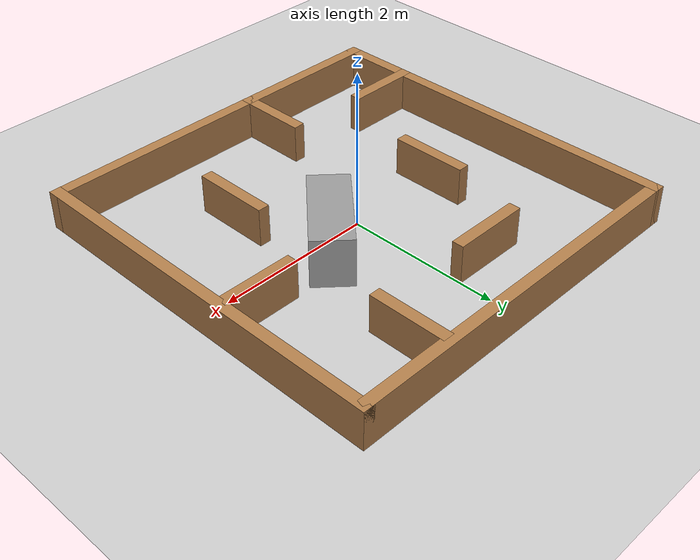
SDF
<sdf version="1.7">
 <world name="default">
  <model name="ground_plane">
   <static>1</static>
   <link name="link">
    <collision name="collision">
     <geometry><plane><normal>0 0 1</normal><size>100 100</size></plane></geometry>
     <surface><friction><ode><mu>100</mu><mu2>50</mu2></ode></friction></surface>
    </collision>
    <visual name="visual">
     <cast_shadows>0</cast_shadows>
     <geometry><plane><normal>0 0 1</normal><size>100 100</size></plane></geometry>
     <material>
      <script><uri>file://media/materials/scripts/gazebo.material</uri><name>Gazebo/Grey</name></script>
     </material>
    </visual>
   </link>
  </model>
  <light name="sun" type="directional">
   <pose>0 0 10 0 -0 0</pose>
   <diffuse>0.8 0.8 0.8 1</diffuse>
   <specular>0.2 0.2 0.2 1</specular>
   <attenuation>
    <range>1000</range>
    <constant>0.9</constant>
    <linear>0.01</linear>
    <quadratic>0.001</quadratic>
   </attenuation>
   <direction>-0.5 0.1 -0.9</direction>
   <spot><inner_angle>0</inner_angle><outer_angle>0</outer_angle><falloff>0</falloff></spot>
  </light>
  <scene><shadows>0</shadows><ambient>0.4 0.4 0.4 1</ambient><background>0.7 0.7 0.7 1</background></scene>
  <physics type="ode">
   <real_time_update_rate>1000</real_time_update_rate>
   <max_step_size>0.001</max_step_size>
   <real_time_factor>1</real_time_factor>
   <ode>
    <solver>
     <type>quick</type>
     <iters>150</iters>
     <precon_iters>0</precon_iters>
     <sor>1.4</sor>
     <use_dynamic_moi_rescaling>1</use_dynamic_moi_rescaling>
    </solver>
    <constraints>
     <cfm>1e-05</cfm>
     <erp>0.2</erp>
     <contact_max_correcting_vel>2000</contact_max_correcting_vel>
     <contact_surface_layer>0.01</contact_surface_layer>
    </constraints>
   </ode>
  </physics>
  <model name="turtlebot3_dqn_world">
   <static>1</static>
   <frame name="turtlebot3_square::__model__" attached_to="turtlebot3_square::Wall_1">
    <pose relative_to="__model__">0 0 0 0 -0 0</pose>
   </frame>
   <link name="turtlebot3_square::Wall_1">
    <collision name="Wall_1_Collision">
     <geometry><box><size>5 0.15 0.5</size></box></geometry>
     <pose>0 0 0.25 0 -0 0</pose>
    </collision>
    <visual name="Wall_1_Visual">
     <pose>0 0 0.25 0 -0 0</pose>
     <geometry><box><size>5 0.15 0.5</size></box></geometry>
     <material>
      <script><uri>file://media/materials/scripts/gazebo.material</uri><name>Gazebo/Wood</name></script>
      <ambient>1 1 1 1</ambient>
     </material>
    </visual>
    <pose relative_to="turtlebot3_square::__model__">-2.425 0 0 0 -0 1.5708</pose>
   </link>
   <link name="turtlebot3_square::Wall_2">
    <collision name="Wall_2_Collision">
     <geometry><box><size>5 0.15 0.5</size></box></geometry>
     <pose>0 0 0.25 0 -0 0</pose>
    </collision>
    <visual name="Wall_2_Visual">
     <pose>0 0 0.25 0 -0 0</pose>
     <geometry><box><size>5 0.15 0.5</size></box></geometry>
     <material>
      <script><uri>file://media/materials/scripts/gazebo.material</uri><name>Gazebo/Wood</name></script>
      <ambient>1 1 1 1</ambient>
     </material>
    </visual>
    <pose relative_to="turtlebot3_square::__model__">0 2.425 0 0 -0 0</pose>
   </link>
   <link name="turtlebot3_square::Wall_3">
    <collision name="Wall_3_Collision">
     <geometry><box><size>5 0.15 0.5</size></box></geometry>
     <pose>0 0 0.25 0 -0 0</pose>
    </collision>
    <visual name="Wall_3_Visual">
     <pose>0 0 0.25 0 -0 0</pose>
     <geometry><box><size>5 0.15 0.5</size></box></geometry>
     <material>
      <script><uri>file://media/materials/scripts/gazebo.material</uri><name>Gazebo/Wood</name></script>
      <ambient>1 1 1 1</ambient>
     </material>
    </visual>
    <pose relative_to="turtlebot3_square::__model__">2.425 0 0 0 0 -1.5708</pose>
   </link>
   <link name="turtlebot3_square::Wall_4">
    <collision name="Wall_4_Collision">
     <geometry><box><size>5 0.15 0.5</size></box></geometry>
     <pose>0 0 0.25 0 -0 0</pose>
    </collision>
    <visual name="Wall_4_Visual">
     <pose>0 0 0.25 0 -0 0</pose>
     <geometry><box><size>5 0.15 0.5</size></box></geometry>
     <material>
      <script><uri>file://media/materials/scripts/gazebo.material</uri><name>Gazebo/Wood</name></script>
      <ambient>1 1 1 1</ambient>
     </material>
    </visual>
    <pose relative_to="turtlebot3_square::__model__">0 -2.425 0 0 -0 3.14159</pose>
   </link>
   <static>1</static>
  </model>
  <model name="inner_walls">
   <link name="inner_wall_1">
    <collision name="inner_wall_1_collision">
     <geometry><box><size>1 0.15 0.5</size></box></geometry>
     <pose>0 0 0.25 0 -0 0</pose>
    </collision>
    <visual name="inner_wall_visual">
     <pose>0 0 0.25 0 -0 0</pose>
     <geometry><box><size>1 0.15 0.5</size></box></geometry>
     <material>
      <script><uri>file://media/materials/scripts/gazebo.material</uri><name>Gazebo/Wood</name></script>
      <ambient>1 1 1 1</ambient>
     </material>
    </visual>
    <pose>-2 -1.5 0 0 -0 0</pose>
   </link>
   <link name="inner_wall_2">
    <collision name="inner_wall_2_collision">
     <geometry><box><size>1 0.15 0.5</size></box></geometry>
     <pose>0 0 0.25 0 -0 0</pose>
    </collision>
    <visual name="inner_wall_2_visual">
     <pose>0 0 0.25 0 -0 0</pose>
     <geometry><box><size>1 0.15 0.5</size></box></geometry>
     <material>
      <script><uri>file://media/materials/scripts/gazebo.material</uri><name>Gazebo/Wood</name></script>
      <ambient>1 1 1 1</ambient>
     </material>
    </visual>
    <pose>-0.5 -2 0 0 0 -1.5708</pose>
   </link>
   <link name="inner_wall_3">
    <collision name="inner_wall_3_collision">
     <geometry><box><size>1 0.15 0.5</size></box></geometry>
     <pose>0 0 0.25 0 -0 0</pose>
    </collision>
    <visual name="inner_wall_3_visual">
     <pose>0 0 0.25 0 -0 0</pose>
     <geometry><box><size>1 0.15 0.5</size></box></geometry>
     <material>
      <script><uri>file://media/materials/scripts/gazebo.material</uri><name>Gazebo/Wood</name></script>
      <ambient>1 1 1 1</ambient>
     </material>
    </visual>
    <pose>1 -1 0 0 -0 1.5708</pose>
   </link>
   <link name="inner_wall_4">
    <collision name="inner_wall_4_collision">
     <geometry><box><size>1 0.15 0.5</size></box></geometry>
     <pose>0 0 0.25 0 -0 0</pose>
    </collision>
    <visual name="inner_wall_4_visual">
     <pose>0 0 0.25 0 -0 0</pose>
     <geometry><box><size>1 0.15 0.5</size></box></geometry>
     <material>
      <script><uri>file://media/materials/scripts/gazebo.material</uri><name>Gazebo/Wood</name></script>
      <ambient>1 1 1 1</ambient>
     </material>
    </visual>
    <pose>1.2 1.9 0 0 0 -1.5708</pose>
   </link>
   <link name="inner_wall_5">
    <collision name="inner_wall_5_collision">
     <geometry><box><size>1 0.15 0.5</size></box></geometry>
     <pose>0 0 0.25 0 -0 0</pose>
    </collision>
    <visual name="inner_wall_5_visual">
     <pose>0 0 0.25 0 -0 0</pose>
     <geometry><box><size>1 0.15 0.5</size></box></geometry>
     <material>
      <script><uri>file://media/materials/scripts/gazebo.material</uri><name>Gazebo/Wood</name></script>
      <ambient>1 1 1 1</ambient>
     </material>
    </visual>
    <pose>1.9 0.4 0 0 -0 0</pose>
   </link>
   <link name="inner_wall_6">
    <collision name="inner_wall_6_collision">
     <geometry><box><size>1 0.15 0.5</size></box></geometry>
     <pose>0 0 0.25 0 -0 0</pose>
    </collision>
    <visual name="inner_wall_6_visual">
     <pose>0 0 0.25 0 -0 0</pose>
     <geometry><box><size>1 0.15 0.5</size></box></geometry>
     <material>
      <script><uri>file://media/materials/scripts/gazebo.material</uri><name>Gazebo/Wood</name></script>
      <ambient>1 1 1 1</ambient>
     </material>
    </visual>
    <pose>-0.5 1.5 0 0 -0 0</pose>
   </link>
   <link name="inner_wall_7">
    <collision name="inner_wall_7_collision">
     <geometry><box><size>1 0.15 0.5</size></box></geometry>
     <pose>0 0 0.25 0 -0 0</pose>
    </collision>
    <visual name="inner_wall_7_visual">
     <pose>0 0 0.25 0 -0 0</pose>
     <geometry><box><size>1 0.15 0.5</size></box></geometry>
     <material>
      <script><uri>file://media/materials/scripts/gazebo.material</uri><name>Gazebo/Wood</name></script>
      <ambient>1 1 1 1</ambient>
     </material>
    </visual>
    <pose>-1.2 0.092 0 0 0 -1.5708</pose>
   </link>
   <static>1</static>
  </model>
  <gravity>0 0 -9.8</gravity>
  <magnetic_field>6e-06 2.3e-05 -4.2e-05</magnetic_field>
  <atmosphere type="adiabatic"/>
  <audio><device>default</device></audio>
  <spherical_coordinates>
   <surface_model>EARTH_WGS84</surface_model>
   <latitude_deg>0</latitude_deg>
   <longitude_deg>0</longitude_deg>
   <elevation>0</elevation>
   <heading_deg>0</heading_deg>
  </spherical_coordinates>
  <model name="unit_box">
   <pose>0.589544 0.149955 0.317887 0 -0 0.824355</pose>
   <link name="link">
    <inertial>
     <mass>1</mass>
     <inertia>
      <ixx>0.166667</ixx>
      <ixy>0</ixy>
      <ixz>0</ixz>
      <iyy>0.166667</iyy>
      <iyz>0</iyz>
      <izz>0.166667</izz>
     </inertia>
    </inertial>
    <collision name="collision"><geometry><box><size>1.2646 0.514423 0.635775</size></box></geometry></collision>
    <visual name="visual">
     <geometry><box><size>1.2646 0.514423 0.635775</size></box></geometry>
     <material>
      <script><name>Gazebo/Grey</name><uri>file://media/materials/scripts/gazebo.material</uri></script>
     </material>
    </visual>
   </link>
  </model>
 </world>
</sdf>
